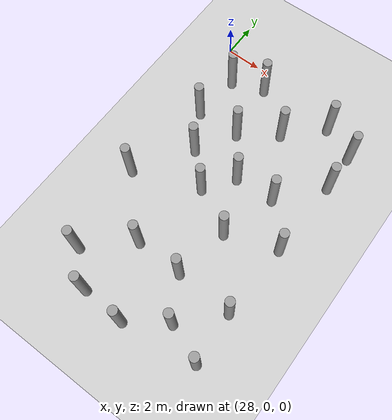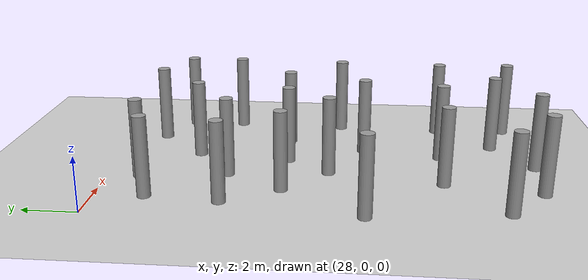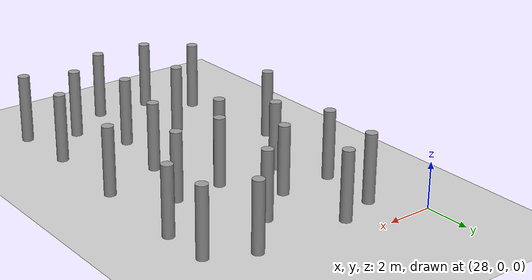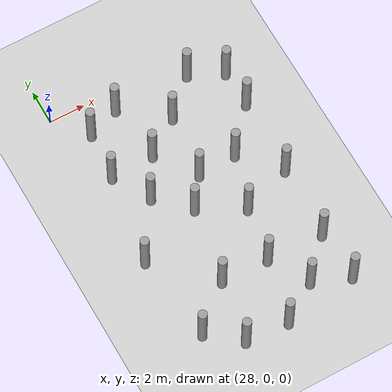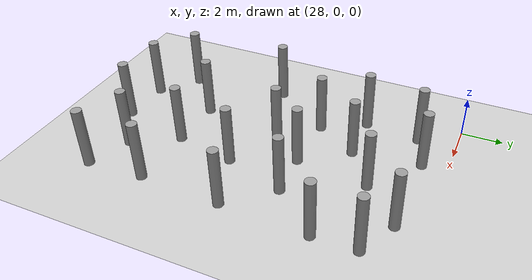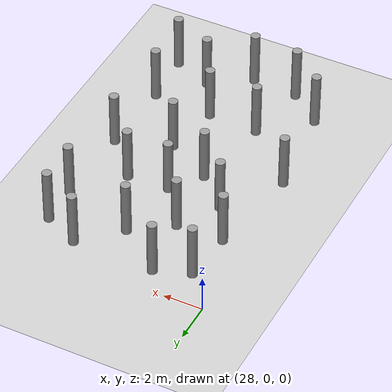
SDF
<sdf version="1.6">
 <world name="default">
  <model name="ground_plane">
   <static>1</static>
   <link name="link">
    <collision name="collision">
     <geometry><plane><normal>0 0 1</normal><size>100 100</size></plane></geometry>
     <surface><friction><ode><mu>100</mu><mu2>50</mu2></ode></friction></surface>
    </collision>
    <visual name="visual">
     <cast_shadows>0</cast_shadows>
     <geometry><plane><normal>0 0 1</normal><size>100 100</size></plane></geometry>
     <material>
      <script><uri>file://media/materials/scripts/gazebo.material</uri><name>Gazebo/Grey</name></script>
     </material>
    </visual>
   </link>
  </model>
  <model name="LjjForest_6">
   <link name="link_0_clone_1">
    <inertial>
     <mass>1</mass>
     <inertia><ixx>0.145833</ixx><ixy>0</ixy><ixz>0</ixz><iyy>0.145833</iyy><iyz>0</iyz><izz>0.125</izz></inertia>
    </inertial>
    <pose>-1.2394 -1.64814 0 0 -0 0</pose>
    <visual name="visual">
     <geometry><cylinder><radius>0.25</radius><length>3</length></cylinder></geometry>
     <material>
      <lighting>1</lighting>
      <script><uri>file://media/materials/scripts/gazebo.material</uri><name>Gazebo/Grey</name></script>
      <shader type="vertex"><normal_map>__default__</normal_map></shader>
      <ambient>0.3 0.3 0.3 1</ambient>
      <diffuse>0.7 0.7 0.7 1</diffuse>
      <specular>0.01 0.01 0.01 1</specular>
      <emissive>0 0 0 1</emissive>
     </material>
    </visual>
    <collision name="collision">
     <geometry><cylinder><radius>0.25</radius><length>3</length></cylinder></geometry>
     <surface>
      <friction>
       <ode><mu>1</mu><mu2>1</mu2><fdir1>0 0 0</fdir1><slip1>0</slip1><slip2>0</slip2></ode>
       <torsional>
        <coefficient>1</coefficient>
        <patch_radius>0</patch_radius>
        <surface_radius>0</surface_radius>
        <use_patch_radius>1</use_patch_radius>
        <ode><slip>0</slip></ode>
       </torsional>
      </friction>
      <bounce><restitution_coefficient>0</restitution_coefficient><threshold>1e+06</threshold></bounce>
      <contact>
       <collide_without_contact>0</collide_without_contact>
       <collide_without_contact_bitmask>1</collide_without_contact_bitmask>
       <collide_bitmask>1</collide_bitmask>
       <ode>
        <soft_cfm>0</soft_cfm>
        <soft_erp>0.2</soft_erp>
        <kp>1e+13</kp>
        <kd>1</kd>
        <max_vel>0.01</max_vel>
        <min_depth>0</min_depth>
       </ode>
       <bullet>
        <split_impulse>1</split_impulse>
        <split_impulse_penetration_threshold>-0.01</split_impulse_penetration_threshold>
        <soft_cfm>0</soft_cfm>
        <soft_erp>0.2</soft_erp>
        <kp>1e+13</kp>
        <kd>1</kd>
       </bullet>
      </contact>
     </surface>
    </collision>
   </link>
   <link name="link_0_clone_10">
    <inertial>
     <mass>1</mass>
     <inertia><ixx>0.145833</ixx><ixy>0</ixy><ixz>0</ixz><iyy>0.145833</iyy><iyz>0</iyz><izz>0.125</izz></inertia>
    </inertial>
    <pose>4.92442 -4.7051 0 0 -0 0</pose>
    <visual name="visual">
     <geometry><cylinder><radius>0.25</radius><length>3</length></cylinder></geometry>
     <material>
      <lighting>1</lighting>
      <script><uri>file://media/materials/scripts/gazebo.material</uri><name>Gazebo/Grey</name></script>
      <shader type="vertex"><normal_map>__default__</normal_map></shader>
      <ambient>0.3 0.3 0.3 1</ambient>
      <diffuse>0.7 0.7 0.7 1</diffuse>
      <specular>0.01 0.01 0.01 1</specular>
      <emissive>0 0 0 1</emissive>
     </material>
    </visual>
    <collision name="collision">
     <geometry><cylinder><radius>0.25</radius><length>3</length></cylinder></geometry>
     <surface>
      <friction>
       <ode><mu>1</mu><mu2>1</mu2><fdir1>0 0 0</fdir1><slip1>0</slip1><slip2>0</slip2></ode>
       <torsional>
        <coefficient>1</coefficient>
        <patch_radius>0</patch_radius>
        <surface_radius>0</surface_radius>
        <use_patch_radius>1</use_patch_radius>
        <ode><slip>0</slip></ode>
       </torsional>
      </friction>
      <bounce><restitution_coefficient>0</restitution_coefficient><threshold>1e+06</threshold></bounce>
      <contact>
       <collide_without_contact>0</collide_without_contact>
       <collide_without_contact_bitmask>1</collide_without_contact_bitmask>
       <collide_bitmask>1</collide_bitmask>
       <ode>
        <soft_cfm>0</soft_cfm>
        <soft_erp>0.2</soft_erp>
        <kp>1e+13</kp>
        <kd>1</kd>
        <max_vel>0.01</max_vel>
        <min_depth>0</min_depth>
       </ode>
       <bullet>
        <split_impulse>1</split_impulse>
        <split_impulse_penetration_threshold>-0.01</split_impulse_penetration_threshold>
        <soft_cfm>0</soft_cfm>
        <soft_erp>0.2</soft_erp>
        <kp>1e+13</kp>
        <kd>1</kd>
       </bullet>
      </contact>
     </surface>
    </collision>
   </link>
   <link name="link_0_clone_11">
    <inertial>
     <mass>1</mass>
     <inertia><ixx>0.145833</ixx><ixy>0</ixy><ixz>0</ixz><iyy>0.145833</iyy><iyz>0</iyz><izz>0.125</izz></inertia>
    </inertial>
    <pose>2.92414 -7.00263 0 0 -0 0</pose>
    <visual name="visual">
     <geometry><cylinder><radius>0.25</radius><length>3</length></cylinder></geometry>
     <material>
      <lighting>1</lighting>
      <script><uri>file://media/materials/scripts/gazebo.material</uri><name>Gazebo/Grey</name></script>
      <shader type="vertex"><normal_map>__default__</normal_map></shader>
      <ambient>0.3 0.3 0.3 1</ambient>
      <diffuse>0.7 0.7 0.7 1</diffuse>
      <specular>0.01 0.01 0.01 1</specular>
      <emissive>0 0 0 1</emissive>
     </material>
    </visual>
    <collision name="collision">
     <geometry><cylinder><radius>0.25</radius><length>3</length></cylinder></geometry>
     <surface>
      <friction>
       <ode><mu>1</mu><mu2>1</mu2><fdir1>0 0 0</fdir1><slip1>0</slip1><slip2>0</slip2></ode>
       <torsional>
        <coefficient>1</coefficient>
        <patch_radius>0</patch_radius>
        <surface_radius>0</surface_radius>
        <use_patch_radius>1</use_patch_radius>
        <ode><slip>0</slip></ode>
       </torsional>
      </friction>
      <bounce><restitution_coefficient>0</restitution_coefficient><threshold>1e+06</threshold></bounce>
      <contact>
       <collide_without_contact>0</collide_without_contact>
       <collide_without_contact_bitmask>1</collide_without_contact_bitmask>
       <collide_bitmask>1</collide_bitmask>
       <ode>
        <soft_cfm>0</soft_cfm>
        <soft_erp>0.2</soft_erp>
        <kp>1e+13</kp>
        <kd>1</kd>
        <max_vel>0.01</max_vel>
        <min_depth>0</min_depth>
       </ode>
       <bullet>
        <split_impulse>1</split_impulse>
        <split_impulse_penetration_threshold>-0.01</split_impulse_penetration_threshold>
        <soft_cfm>0</soft_cfm>
        <soft_erp>0.2</soft_erp>
        <kp>1e+13</kp>
        <kd>1</kd>
       </bullet>
      </contact>
     </surface>
    </collision>
   </link>
   <link name="link_0_clone_12">
    <inertial>
     <mass>1</mass>
     <inertia><ixx>0.145833</ixx><ixy>0</ixy><ixz>0</ixz><iyy>0.145833</iyy><iyz>0</iyz><izz>0.125</izz></inertia>
    </inertial>
    <pose>4.76112 -9.06376 0 0 -0 0</pose>
    <visual name="visual">
     <geometry><cylinder><radius>0.25</radius><length>3</length></cylinder></geometry>
     <material>
      <lighting>1</lighting>
      <script><uri>file://media/materials/scripts/gazebo.material</uri><name>Gazebo/Grey</name></script>
      <shader type="vertex"><normal_map>__default__</normal_map></shader>
      <ambient>0.3 0.3 0.3 1</ambient>
      <diffuse>0.7 0.7 0.7 1</diffuse>
      <specular>0.01 0.01 0.01 1</specular>
      <emissive>0 0 0 1</emissive>
     </material>
    </visual>
    <collision name="collision">
     <geometry><cylinder><radius>0.25</radius><length>3</length></cylinder></geometry>
     <surface>
      <friction>
       <ode><mu>1</mu><mu2>1</mu2><fdir1>0 0 0</fdir1><slip1>0</slip1><slip2>0</slip2></ode>
       <torsional>
        <coefficient>1</coefficient>
        <patch_radius>0</patch_radius>
        <surface_radius>0</surface_radius>
        <use_patch_radius>1</use_patch_radius>
        <ode><slip>0</slip></ode>
       </torsional>
      </friction>
      <bounce><restitution_coefficient>0</restitution_coefficient><threshold>1e+06</threshold></bounce>
      <contact>
       <collide_without_contact>0</collide_without_contact>
       <collide_without_contact_bitmask>1</collide_without_contact_bitmask>
       <collide_bitmask>1</collide_bitmask>
       <ode>
        <soft_cfm>0</soft_cfm>
        <soft_erp>0.2</soft_erp>
        <kp>1e+13</kp>
        <kd>1</kd>
        <max_vel>0.01</max_vel>
        <min_depth>0</min_depth>
       </ode>
       <bullet>
        <split_impulse>1</split_impulse>
        <split_impulse_penetration_threshold>-0.01</split_impulse_penetration_threshold>
        <soft_cfm>0</soft_cfm>
        <soft_erp>0.2</soft_erp>
        <kp>1e+13</kp>
        <kd>1</kd>
       </bullet>
      </contact>
     </surface>
    </collision>
   </link>
   <link name="link_0_clone_13">
    <inertial>
     <mass>1</mass>
     <inertia><ixx>0.145833</ixx><ixy>0</ixy><ixz>0</ixz><iyy>0.145833</iyy><iyz>0</iyz><izz>0.125</izz></inertia>
    </inertial>
    <pose>0.731055 -7.10049 0 0 -0 0</pose>
    <visual name="visual">
     <geometry><cylinder><radius>0.25</radius><length>3</length></cylinder></geometry>
     <material>
      <lighting>1</lighting>
      <script><uri>file://media/materials/scripts/gazebo.material</uri><name>Gazebo/Grey</name></script>
      <shader type="vertex"><normal_map>__default__</normal_map></shader>
      <ambient>0.3 0.3 0.3 1</ambient>
      <diffuse>0.7 0.7 0.7 1</diffuse>
      <specular>0.01 0.01 0.01 1</specular>
      <emissive>0 0 0 1</emissive>
     </material>
    </visual>
    <collision name="collision">
     <geometry><cylinder><radius>0.25</radius><length>3</length></cylinder></geometry>
     <surface>
      <friction>
       <ode><mu>1</mu><mu2>1</mu2><fdir1>0 0 0</fdir1><slip1>0</slip1><slip2>0</slip2></ode>
       <torsional>
        <coefficient>1</coefficient>
        <patch_radius>0</patch_radius>
        <surface_radius>0</surface_radius>
        <use_patch_radius>1</use_patch_radius>
        <ode><slip>0</slip></ode>
       </torsional>
      </friction>
      <bounce><restitution_coefficient>0</restitution_coefficient><threshold>1e+06</threshold></bounce>
      <contact>
       <collide_without_contact>0</collide_without_contact>
       <collide_without_contact_bitmask>1</collide_without_contact_bitmask>
       <collide_bitmask>1</collide_bitmask>
       <ode>
        <soft_cfm>0</soft_cfm>
        <soft_erp>0.2</soft_erp>
        <kp>1e+13</kp>
        <kd>1</kd>
        <max_vel>0.01</max_vel>
        <min_depth>0</min_depth>
       </ode>
       <bullet>
        <split_impulse>1</split_impulse>
        <split_impulse_penetration_threshold>-0.01</split_impulse_penetration_threshold>
        <soft_cfm>0</soft_cfm>
        <soft_erp>0.2</soft_erp>
        <kp>1e+13</kp>
        <kd>1</kd>
       </bullet>
      </contact>
     </surface>
    </collision>
   </link>
   <link name="link_0_clone_14">
    <inertial>
     <mass>1</mass>
     <inertia><ixx>0.145833</ixx><ixy>0</ixy><ixz>0</ixz><iyy>0.145833</iyy><iyz>0</iyz><izz>0.125</izz></inertia>
    </inertial>
    <pose>-0.840028 -4.93267 0 0 -0 0</pose>
    <visual name="visual">
     <geometry><cylinder><radius>0.25</radius><length>3</length></cylinder></geometry>
     <material>
      <lighting>1</lighting>
      <script><uri>file://media/materials/scripts/gazebo.material</uri><name>Gazebo/Grey</name></script>
      <shader type="vertex"><normal_map>__default__</normal_map></shader>
      <ambient>0.3 0.3 0.3 1</ambient>
      <diffuse>0.7 0.7 0.7 1</diffuse>
      <specular>0.01 0.01 0.01 1</specular>
      <emissive>0 0 0 1</emissive>
     </material>
    </visual>
    <collision name="collision">
     <geometry><cylinder><radius>0.25</radius><length>3</length></cylinder></geometry>
     <surface>
      <friction>
       <ode><mu>1</mu><mu2>1</mu2><fdir1>0 0 0</fdir1><slip1>0</slip1><slip2>0</slip2></ode>
       <torsional>
        <coefficient>1</coefficient>
        <patch_radius>0</patch_radius>
        <surface_radius>0</surface_radius>
        <use_patch_radius>1</use_patch_radius>
        <ode><slip>0</slip></ode>
       </torsional>
      </friction>
      <bounce><restitution_coefficient>0</restitution_coefficient><threshold>1e+06</threshold></bounce>
      <contact>
       <collide_without_contact>0</collide_without_contact>
       <collide_without_contact_bitmask>1</collide_without_contact_bitmask>
       <collide_bitmask>1</collide_bitmask>
       <ode>
        <soft_cfm>0</soft_cfm>
        <soft_erp>0.2</soft_erp>
        <kp>1e+13</kp>
        <kd>1</kd>
        <max_vel>0.01</max_vel>
        <min_depth>0</min_depth>
       </ode>
       <bullet>
        <split_impulse>1</split_impulse>
        <split_impulse_penetration_threshold>-0.01</split_impulse_penetration_threshold>
        <soft_cfm>0</soft_cfm>
        <soft_erp>0.2</soft_erp>
        <kp>1e+13</kp>
        <kd>1</kd>
       </bullet>
      </contact>
     </surface>
    </collision>
   </link>
   <link name="link_0_clone_15">
    <inertial>
     <mass>1</mass>
     <inertia><ixx>0.145833</ixx><ixy>0</ixy><ixz>0</ixz><iyy>0.145833</iyy><iyz>0</iyz><izz>0.125</izz></inertia>
    </inertial>
    <pose>-3.03254 -2.29236 0 0 -0 0</pose>
    <visual name="visual">
     <geometry><cylinder><radius>0.25</radius><length>3</length></cylinder></geometry>
     <material>
      <lighting>1</lighting>
      <script><uri>file://media/materials/scripts/gazebo.material</uri><name>Gazebo/Grey</name></script>
      <shader type="vertex"><normal_map>__default__</normal_map></shader>
      <ambient>0.3 0.3 0.3 1</ambient>
      <diffuse>0.7 0.7 0.7 1</diffuse>
      <specular>0.01 0.01 0.01 1</specular>
      <emissive>0 0 0 1</emissive>
     </material>
    </visual>
    <collision name="collision">
     <geometry><cylinder><radius>0.25</radius><length>3</length></cylinder></geometry>
     <surface>
      <friction>
       <ode><mu>1</mu><mu2>1</mu2><fdir1>0 0 0</fdir1><slip1>0</slip1><slip2>0</slip2></ode>
       <torsional>
        <coefficient>1</coefficient>
        <patch_radius>0</patch_radius>
        <surface_radius>0</surface_radius>
        <use_patch_radius>1</use_patch_radius>
        <ode><slip>0</slip></ode>
       </torsional>
      </friction>
      <bounce><restitution_coefficient>0</restitution_coefficient><threshold>1e+06</threshold></bounce>
      <contact>
       <collide_without_contact>0</collide_without_contact>
       <collide_without_contact_bitmask>1</collide_without_contact_bitmask>
       <collide_bitmask>1</collide_bitmask>
       <ode>
        <soft_cfm>0</soft_cfm>
        <soft_erp>0.2</soft_erp>
        <kp>1e+13</kp>
        <kd>1</kd>
        <max_vel>0.01</max_vel>
        <min_depth>0</min_depth>
       </ode>
       <bullet>
        <split_impulse>1</split_impulse>
        <split_impulse_penetration_threshold>-0.01</split_impulse_penetration_threshold>
        <soft_cfm>0</soft_cfm>
        <soft_erp>0.2</soft_erp>
        <kp>1e+13</kp>
        <kd>1</kd>
       </bullet>
      </contact>
     </surface>
    </collision>
   </link>
   <link name="link_0_clone_17">
    <inertial>
     <mass>1</mass>
     <inertia><ixx>0.145833</ixx><ixy>0</ixy><ixz>0</ixz><iyy>0.145833</iyy><iyz>0</iyz><izz>0.125</izz></inertia>
    </inertial>
    <pose>-3.28823 -4.99733 0 0 -0 0</pose>
    <visual name="visual">
     <geometry><cylinder><radius>0.25</radius><length>3</length></cylinder></geometry>
     <material>
      <lighting>1</lighting>
      <script><uri>file://media/materials/scripts/gazebo.material</uri><name>Gazebo/Grey</name></script>
      <shader type="vertex"><normal_map>__default__</normal_map></shader>
      <ambient>0.3 0.3 0.3 1</ambient>
      <diffuse>0.7 0.7 0.7 1</diffuse>
      <specular>0.01 0.01 0.01 1</specular>
      <emissive>0 0 0 1</emissive>
     </material>
    </visual>
    <collision name="collision">
     <geometry><cylinder><radius>0.25</radius><length>3</length></cylinder></geometry>
     <surface>
      <friction>
       <ode><mu>1</mu><mu2>1</mu2><fdir1>0 0 0</fdir1><slip1>0</slip1><slip2>0</slip2></ode>
       <torsional>
        <coefficient>1</coefficient>
        <patch_radius>0</patch_radius>
        <surface_radius>0</surface_radius>
        <use_patch_radius>1</use_patch_radius>
        <ode><slip>0</slip></ode>
       </torsional>
      </friction>
      <bounce><restitution_coefficient>0</restitution_coefficient><threshold>1e+06</threshold></bounce>
      <contact>
       <collide_without_contact>0</collide_without_contact>
       <collide_without_contact_bitmask>1</collide_without_contact_bitmask>
       <collide_bitmask>1</collide_bitmask>
       <ode>
        <soft_cfm>0</soft_cfm>
        <soft_erp>0.2</soft_erp>
        <kp>1e+13</kp>
        <kd>1</kd>
        <max_vel>0.01</max_vel>
        <min_depth>0</min_depth>
       </ode>
       <bullet>
        <split_impulse>1</split_impulse>
        <split_impulse_penetration_threshold>-0.01</split_impulse_penetration_threshold>
        <soft_cfm>0</soft_cfm>
        <soft_erp>0.2</soft_erp>
        <kp>1e+13</kp>
        <kd>1</kd>
       </bullet>
      </contact>
     </surface>
    </collision>
   </link>
   <link name="link_0_clone_18">
    <inertial>
     <mass>1</mass>
     <inertia><ixx>0.145833</ixx><ixy>0</ixy><ixz>0</ixz><iyy>0.145833</iyy><iyz>0</iyz><izz>0.125</izz></inertia>
    </inertial>
    <pose>-2.11118 -7.04502 0 0 -0 0</pose>
    <visual name="visual">
     <geometry><cylinder><radius>0.25</radius><length>3</length></cylinder></geometry>
     <material>
      <lighting>1</lighting>
      <script><uri>file://media/materials/scripts/gazebo.material</uri><name>Gazebo/Grey</name></script>
      <shader type="vertex"><normal_map>__default__</normal_map></shader>
      <ambient>0.3 0.3 0.3 1</ambient>
      <diffuse>0.7 0.7 0.7 1</diffuse>
      <specular>0.01 0.01 0.01 1</specular>
      <emissive>0 0 0 1</emissive>
     </material>
    </visual>
    <collision name="collision">
     <geometry><cylinder><radius>0.25</radius><length>3</length></cylinder></geometry>
     <surface>
      <friction>
       <ode><mu>1</mu><mu2>1</mu2><fdir1>0 0 0</fdir1><slip1>0</slip1><slip2>0</slip2></ode>
       <torsional>
        <coefficient>1</coefficient>
        <patch_radius>0</patch_radius>
        <surface_radius>0</surface_radius>
        <use_patch_radius>1</use_patch_radius>
        <ode><slip>0</slip></ode>
       </torsional>
      </friction>
      <bounce><restitution_coefficient>0</restitution_coefficient><threshold>1e+06</threshold></bounce>
      <contact>
       <collide_without_contact>0</collide_without_contact>
       <collide_without_contact_bitmask>1</collide_without_contact_bitmask>
       <collide_bitmask>1</collide_bitmask>
       <ode>
        <soft_cfm>0</soft_cfm>
        <soft_erp>0.2</soft_erp>
        <kp>1e+13</kp>
        <kd>1</kd>
        <max_vel>0.01</max_vel>
        <min_depth>0</min_depth>
       </ode>
       <bullet>
        <split_impulse>1</split_impulse>
        <split_impulse_penetration_threshold>-0.01</split_impulse_penetration_threshold>
        <soft_cfm>0</soft_cfm>
        <soft_erp>0.2</soft_erp>
        <kp>1e+13</kp>
        <kd>1</kd>
       </bullet>
      </contact>
     </surface>
    </collision>
   </link>
   <link name="link_0_clone_19">
    <inertial>
     <mass>1</mass>
     <inertia><ixx>0.145833</ixx><ixy>0</ixy><ixz>0</ixz><iyy>0.145833</iyy><iyz>0</iyz><izz>0.125</izz></inertia>
    </inertial>
    <pose>-0.4391 -8.69513 0 0 -0 0</pose>
    <visual name="visual">
     <geometry><cylinder><radius>0.25</radius><length>3</length></cylinder></geometry>
     <material>
      <lighting>1</lighting>
      <script><uri>file://media/materials/scripts/gazebo.material</uri><name>Gazebo/Grey</name></script>
      <shader type="vertex"><normal_map>__default__</normal_map></shader>
      <ambient>0.3 0.3 0.3 1</ambient>
      <diffuse>0.7 0.7 0.7 1</diffuse>
      <specular>0.01 0.01 0.01 1</specular>
      <emissive>0 0 0 1</emissive>
     </material>
    </visual>
    <collision name="collision">
     <geometry><cylinder><radius>0.25</radius><length>3</length></cylinder></geometry>
     <surface>
      <friction>
       <ode><mu>1</mu><mu2>1</mu2><fdir1>0 0 0</fdir1><slip1>0</slip1><slip2>0</slip2></ode>
       <torsional>
        <coefficient>1</coefficient>
        <patch_radius>0</patch_radius>
        <surface_radius>0</surface_radius>
        <use_patch_radius>1</use_patch_radius>
        <ode><slip>0</slip></ode>
       </torsional>
      </friction>
      <bounce><restitution_coefficient>0</restitution_coefficient><threshold>1e+06</threshold></bounce>
      <contact>
       <collide_without_contact>0</collide_without_contact>
       <collide_without_contact_bitmask>1</collide_without_contact_bitmask>
       <collide_bitmask>1</collide_bitmask>
       <ode>
        <soft_cfm>0</soft_cfm>
        <soft_erp>0.2</soft_erp>
        <kp>1e+13</kp>
        <kd>1</kd>
        <max_vel>0.01</max_vel>
        <min_depth>0</min_depth>
       </ode>
       <bullet>
        <split_impulse>1</split_impulse>
        <split_impulse_penetration_threshold>-0.01</split_impulse_penetration_threshold>
        <soft_cfm>0</soft_cfm>
        <soft_erp>0.2</soft_erp>
        <kp>1e+13</kp>
        <kd>1</kd>
       </bullet>
      </contact>
     </surface>
    </collision>
   </link>
   <link name="link_0_clone_20">
    <inertial>
     <mass>1</mass>
     <inertia><ixx>0.145833</ixx><ixy>0</ixy><ixz>0</ixz><iyy>0.145833</iyy><iyz>0</iyz><izz>0.125</izz></inertia>
    </inertial>
    <pose>1.97365 -10.0303 0 0 -0 0</pose>
    <visual name="visual">
     <geometry><cylinder><radius>0.25</radius><length>3</length></cylinder></geometry>
     <material>
      <lighting>1</lighting>
      <script><uri>file://media/materials/scripts/gazebo.material</uri><name>Gazebo/Grey</name></script>
      <shader type="vertex"><normal_map>__default__</normal_map></shader>
      <ambient>0.3 0.3 0.3 1</ambient>
      <diffuse>0.7 0.7 0.7 1</diffuse>
      <specular>0.01 0.01 0.01 1</specular>
      <emissive>0 0 0 1</emissive>
     </material>
    </visual>
    <collision name="collision">
     <geometry><cylinder><radius>0.25</radius><length>3</length></cylinder></geometry>
     <surface>
      <friction>
       <ode><mu>1</mu><mu2>1</mu2><fdir1>0 0 0</fdir1><slip1>0</slip1><slip2>0</slip2></ode>
       <torsional>
        <coefficient>1</coefficient>
        <patch_radius>0</patch_radius>
        <surface_radius>0</surface_radius>
        <use_patch_radius>1</use_patch_radius>
        <ode><slip>0</slip></ode>
       </torsional>
      </friction>
      <bounce><restitution_coefficient>0</restitution_coefficient><threshold>1e+06</threshold></bounce>
      <contact>
       <collide_without_contact>0</collide_without_contact>
       <collide_without_contact_bitmask>1</collide_without_contact_bitmask>
       <collide_bitmask>1</collide_bitmask>
       <ode>
        <soft_cfm>0</soft_cfm>
        <soft_erp>0.2</soft_erp>
        <kp>1e+13</kp>
        <kd>1</kd>
        <max_vel>0.01</max_vel>
        <min_depth>0</min_depth>
       </ode>
       <bullet>
        <split_impulse>1</split_impulse>
        <split_impulse_penetration_threshold>-0.01</split_impulse_penetration_threshold>
        <soft_cfm>0</soft_cfm>
        <soft_erp>0.2</soft_erp>
        <kp>1e+13</kp>
        <kd>1</kd>
       </bullet>
      </contact>
     </surface>
    </collision>
   </link>
   <link name="link_0_clone_21">
    <inertial>
     <mass>1</mass>
     <inertia><ixx>0.145833</ixx><ixy>0</ixy><ixz>0</ixz><iyy>0.145833</iyy><iyz>0</iyz><izz>0.125</izz></inertia>
    </inertial>
    <pose>-4.11405 -10.0375 0 0 -0 0</pose>
    <visual name="visual">
     <geometry><cylinder><radius>0.25</radius><length>3</length></cylinder></geometry>
     <material>
      <lighting>1</lighting>
      <script><uri>file://media/materials/scripts/gazebo.material</uri><name>Gazebo/Grey</name></script>
      <shader type="vertex"><normal_map>__default__</normal_map></shader>
      <ambient>0.3 0.3 0.3 1</ambient>
      <diffuse>0.7 0.7 0.7 1</diffuse>
      <specular>0.01 0.01 0.01 1</specular>
      <emissive>0 0 0 1</emissive>
     </material>
    </visual>
    <collision name="collision">
     <geometry><cylinder><radius>0.25</radius><length>3</length></cylinder></geometry>
     <surface>
      <friction>
       <ode><mu>1</mu><mu2>1</mu2><fdir1>0 0 0</fdir1><slip1>0</slip1><slip2>0</slip2></ode>
       <torsional>
        <coefficient>1</coefficient>
        <patch_radius>0</patch_radius>
        <surface_radius>0</surface_radius>
        <use_patch_radius>1</use_patch_radius>
        <ode><slip>0</slip></ode>
       </torsional>
      </friction>
      <bounce><restitution_coefficient>0</restitution_coefficient><threshold>1e+06</threshold></bounce>
      <contact>
       <collide_without_contact>0</collide_without_contact>
       <collide_without_contact_bitmask>1</collide_without_contact_bitmask>
       <collide_bitmask>1</collide_bitmask>
       <ode>
        <soft_cfm>0</soft_cfm>
        <soft_erp>0.2</soft_erp>
        <kp>1e+13</kp>
        <kd>1</kd>
        <max_vel>0.01</max_vel>
        <min_depth>0</min_depth>
       </ode>
       <bullet>
        <split_impulse>1</split_impulse>
        <split_impulse_penetration_threshold>-0.01</split_impulse_penetration_threshold>
        <soft_cfm>0</soft_cfm>
        <soft_erp>0.2</soft_erp>
        <kp>1e+13</kp>
        <kd>1</kd>
       </bullet>
      </contact>
     </surface>
    </collision>
   </link>
   <link name="link_0_clone_32">
    <inertial>
     <mass>1</mass>
     <inertia><ixx>0.145833</ixx><ixy>0</ixy><ixz>0</ixz><iyy>0.145833</iyy><iyz>0</iyz><izz>0.125</izz></inertia>
    </inertial>
    <pose>3.04344 -1.68403 0 0 -0 0</pose>
    <visual name="visual">
     <geometry><cylinder><radius>0.25</radius><length>3</length></cylinder></geometry>
     <material>
      <lighting>1</lighting>
      <script><uri>file://media/materials/scripts/gazebo.material</uri><name>Gazebo/Grey</name></script>
      <shader type="vertex"><normal_map>__default__</normal_map></shader>
      <ambient>0.3 0.3 0.3 1</ambient>
      <diffuse>0.7 0.7 0.7 1</diffuse>
      <specular>0.01 0.01 0.01 1</specular>
      <emissive>0 0 0 1</emissive>
     </material>
    </visual>
    <collision name="collision">
     <geometry><cylinder><radius>0.25</radius><length>3</length></cylinder></geometry>
     <surface>
      <friction>
       <ode><mu>1</mu><mu2>1</mu2><fdir1>0 0 0</fdir1><slip1>0</slip1><slip2>0</slip2></ode>
       <torsional>
        <coefficient>1</coefficient>
        <patch_radius>0</patch_radius>
        <surface_radius>0</surface_radius>
        <use_patch_radius>1</use_patch_radius>
        <ode><slip>0</slip></ode>
       </torsional>
      </friction>
      <bounce><restitution_coefficient>0</restitution_coefficient><threshold>1e+06</threshold></bounce>
      <contact>
       <collide_without_contact>0</collide_without_contact>
       <collide_without_contact_bitmask>1</collide_without_contact_bitmask>
       <collide_bitmask>1</collide_bitmask>
       <ode>
        <soft_cfm>0</soft_cfm>
        <soft_erp>0.2</soft_erp>
        <kp>1e+13</kp>
        <kd>1</kd>
        <max_vel>0.01</max_vel>
        <min_depth>0</min_depth>
       </ode>
       <bullet>
        <split_impulse>1</split_impulse>
        <split_impulse_penetration_threshold>-0.01</split_impulse_penetration_threshold>
        <soft_cfm>0</soft_cfm>
        <soft_erp>0.2</soft_erp>
        <kp>1e+13</kp>
        <kd>1</kd>
       </bullet>
      </contact>
     </surface>
    </collision>
   </link>
   <link name="link_0_clone_7">
    <inertial>
     <mass>1</mass>
     <inertia><ixx>0.145833</ixx><ixy>0</ixy><ixz>0</ixz><iyy>0.145833</iyy><iyz>0</iyz><izz>0.125</izz></inertia>
    </inertial>
    <pose>1.14853 -3.52752 0 0 -0 0</pose>
    <visual name="visual">
     <geometry><cylinder><radius>0.25</radius><length>3</length></cylinder></geometry>
     <material>
      <lighting>1</lighting>
      <script><uri>file://media/materials/scripts/gazebo.material</uri><name>Gazebo/Grey</name></script>
      <shader type="vertex"><normal_map>__default__</normal_map></shader>
      <ambient>0.3 0.3 0.3 1</ambient>
      <diffuse>0.7 0.7 0.7 1</diffuse>
      <specular>0.01 0.01 0.01 1</specular>
      <emissive>0 0 0 1</emissive>
     </material>
    </visual>
    <collision name="collision">
     <geometry><cylinder><radius>0.25</radius><length>3</length></cylinder></geometry>
     <surface>
      <friction>
       <ode><mu>1</mu><mu2>1</mu2><fdir1>0 0 0</fdir1><slip1>0</slip1><slip2>0</slip2></ode>
       <torsional>
        <coefficient>1</coefficient>
        <patch_radius>0</patch_radius>
        <surface_radius>0</surface_radius>
        <use_patch_radius>1</use_patch_radius>
        <ode><slip>0</slip></ode>
       </torsional>
      </friction>
      <bounce><restitution_coefficient>0</restitution_coefficient><threshold>1e+06</threshold></bounce>
      <contact>
       <collide_without_contact>0</collide_without_contact>
       <collide_without_contact_bitmask>1</collide_without_contact_bitmask>
       <collide_bitmask>1</collide_bitmask>
       <ode>
        <soft_cfm>0</soft_cfm>
        <soft_erp>0.2</soft_erp>
        <kp>1e+13</kp>
        <kd>1</kd>
        <max_vel>0.01</max_vel>
        <min_depth>0</min_depth>
       </ode>
       <bullet>
        <split_impulse>1</split_impulse>
        <split_impulse_penetration_threshold>-0.01</split_impulse_penetration_threshold>
        <soft_cfm>0</soft_cfm>
        <soft_erp>0.2</soft_erp>
        <kp>1e+13</kp>
        <kd>1</kd>
       </bullet>
      </contact>
     </surface>
    </collision>
   </link>
   <link name="link_0_clone_9">
    <inertial>
     <mass>1</mass>
     <inertia><ixx>0.145833</ixx><ixy>0</ixy><ixz>0</ixz><iyy>0.145833</iyy><iyz>0</iyz><izz>0.125</izz></inertia>
    </inertial>
    <pose>4.89769 -2.58143 0 0 -0 0</pose>
    <visual name="visual">
     <geometry><cylinder><radius>0.25</radius><length>3</length></cylinder></geometry>
     <material>
      <lighting>1</lighting>
      <script><uri>file://media/materials/scripts/gazebo.material</uri><name>Gazebo/Grey</name></script>
      <shader type="vertex"><normal_map>__default__</normal_map></shader>
      <ambient>0.3 0.3 0.3 1</ambient>
      <diffuse>0.7 0.7 0.7 1</diffuse>
      <specular>0.01 0.01 0.01 1</specular>
      <emissive>0 0 0 1</emissive>
     </material>
    </visual>
    <collision name="collision">
     <geometry><cylinder><radius>0.25</radius><length>3</length></cylinder></geometry>
     <surface>
      <friction>
       <ode><mu>1</mu><mu2>1</mu2><fdir1>0 0 0</fdir1><slip1>0</slip1><slip2>0</slip2></ode>
       <torsional>
        <coefficient>1</coefficient>
        <patch_radius>0</patch_radius>
        <surface_radius>0</surface_radius>
        <use_patch_radius>1</use_patch_radius>
        <ode><slip>0</slip></ode>
       </torsional>
      </friction>
      <bounce><restitution_coefficient>0</restitution_coefficient><threshold>1e+06</threshold></bounce>
      <contact>
       <collide_without_contact>0</collide_without_contact>
       <collide_without_contact_bitmask>1</collide_without_contact_bitmask>
       <collide_bitmask>1</collide_bitmask>
       <ode>
        <soft_cfm>0</soft_cfm>
        <soft_erp>0.2</soft_erp>
        <kp>1e+13</kp>
        <kd>1</kd>
        <max_vel>0.01</max_vel>
        <min_depth>0</min_depth>
       </ode>
       <bullet>
        <split_impulse>1</split_impulse>
        <split_impulse_penetration_threshold>-0.01</split_impulse_penetration_threshold>
        <soft_cfm>0</soft_cfm>
        <soft_erp>0.2</soft_erp>
        <kp>1e+13</kp>
        <kd>1</kd>
       </bullet>
      </contact>
     </surface>
    </collision>
   </link>
   <static>0</static>
   <pose>32.4934 0.445703 1.5 0 -0 0.002209</pose>
  </model>
  <model name="LjjForest_7">
   <link name="link_0_clone_24">
    <inertial>
     <mass>1</mass>
     <inertia><ixx>0.145833</ixx><ixy>0</ixy><ixz>0</ixz><iyy>0.145833</iyy><iyz>0</iyz><izz>0.125</izz></inertia>
    </inertial>
    <pose>2.92874 7.75131 0 0 -0 0</pose>
    <visual name="visual">
     <geometry><cylinder><radius>0.25</radius><length>3</length></cylinder></geometry>
     <material>
      <lighting>1</lighting>
      <script><uri>file://media/materials/scripts/gazebo.material</uri><name>Gazebo/Grey</name></script>
      <shader type="vertex"><normal_map>__default__</normal_map></shader>
      <ambient>0.3 0.3 0.3 1</ambient>
      <diffuse>0.7 0.7 0.7 1</diffuse>
      <specular>0.01 0.01 0.01 1</specular>
      <emissive>0 0 0 1</emissive>
     </material>
    </visual>
    <collision name="collision">
     <geometry><cylinder><radius>0.25</radius><length>3</length></cylinder></geometry>
     <surface>
      <friction>
       <ode><mu>1</mu><mu2>1</mu2><fdir1>0 0 0</fdir1><slip1>0</slip1><slip2>0</slip2></ode>
       <torsional>
        <coefficient>1</coefficient>
        <patch_radius>0</patch_radius>
        <surface_radius>0</surface_radius>
        <use_patch_radius>1</use_patch_radius>
        <ode><slip>0</slip></ode>
       </torsional>
      </friction>
      <bounce><restitution_coefficient>0</restitution_coefficient><threshold>1e+06</threshold></bounce>
      <contact>
       <collide_without_contact>0</collide_without_contact>
       <collide_without_contact_bitmask>1</collide_without_contact_bitmask>
       <collide_bitmask>1</collide_bitmask>
       <ode>
        <soft_cfm>0</soft_cfm>
        <soft_erp>0.2</soft_erp>
        <kp>1e+13</kp>
        <kd>1</kd>
        <max_vel>0.01</max_vel>
        <min_depth>0</min_depth>
       </ode>
       <bullet>
        <split_impulse>1</split_impulse>
        <split_impulse_penetration_threshold>-0.01</split_impulse_penetration_threshold>
        <soft_cfm>0</soft_cfm>
        <soft_erp>0.2</soft_erp>
        <kp>1e+13</kp>
        <kd>1</kd>
       </bullet>
      </contact>
     </surface>
    </collision>
   </link>
   <link name="link_0_clone_25">
    <inertial>
     <mass>1</mass>
     <inertia><ixx>0.145833</ixx><ixy>0</ixy><ixz>0</ixz><iyy>0.145833</iyy><iyz>0</iyz><izz>0.125</izz></inertia>
    </inertial>
    <pose>4.82479 9.76951 0 0 -0 0</pose>
    <visual name="visual">
     <geometry><cylinder><radius>0.25</radius><length>3</length></cylinder></geometry>
     <material>
      <lighting>1</lighting>
      <script><uri>file://media/materials/scripts/gazebo.material</uri><name>Gazebo/Grey</name></script>
      <shader type="vertex"><normal_map>__default__</normal_map></shader>
      <ambient>0.3 0.3 0.3 1</ambient>
      <diffuse>0.7 0.7 0.7 1</diffuse>
      <specular>0.01 0.01 0.01 1</specular>
      <emissive>0 0 0 1</emissive>
     </material>
    </visual>
    <collision name="collision">
     <geometry><cylinder><radius>0.25</radius><length>3</length></cylinder></geometry>
     <surface>
      <friction>
       <ode><mu>1</mu><mu2>1</mu2><fdir1>0 0 0</fdir1><slip1>0</slip1><slip2>0</slip2></ode>
       <torsional>
        <coefficient>1</coefficient>
        <patch_radius>0</patch_radius>
        <surface_radius>0</surface_radius>
        <use_patch_radius>1</use_patch_radius>
        <ode><slip>0</slip></ode>
       </torsional>
      </friction>
      <bounce><restitution_coefficient>0</restitution_coefficient><threshold>1e+06</threshold></bounce>
      <contact>
       <collide_without_contact>0</collide_without_contact>
       <collide_without_contact_bitmask>1</collide_without_contact_bitmask>
       <collide_bitmask>1</collide_bitmask>
       <ode>
        <soft_cfm>0</soft_cfm>
        <soft_erp>0.2</soft_erp>
        <kp>1e+13</kp>
        <kd>1</kd>
        <max_vel>0.01</max_vel>
        <min_depth>0</min_depth>
       </ode>
       <bullet>
        <split_impulse>1</split_impulse>
        <split_impulse_penetration_threshold>-0.01</split_impulse_penetration_threshold>
        <soft_cfm>0</soft_cfm>
        <soft_erp>0.2</soft_erp>
        <kp>1e+13</kp>
        <kd>1</kd>
       </bullet>
      </contact>
     </surface>
    </collision>
   </link>
   <link name="link_0_clone_26">
    <inertial>
     <mass>1</mass>
     <inertia><ixx>0.145833</ixx><ixy>0</ixy><ixz>0</ixz><iyy>0.145833</iyy><iyz>0</iyz><izz>0.125</izz></inertia>
    </inertial>
    <pose>1.66794 9.91533 0 0 -0 0</pose>
    <visual name="visual">
     <geometry><cylinder><radius>0.25</radius><length>3</length></cylinder></geometry>
     <material>
      <lighting>1</lighting>
      <script><uri>file://media/materials/scripts/gazebo.material</uri><name>Gazebo/Grey</name></script>
      <shader type="vertex"><normal_map>__default__</normal_map></shader>
      <ambient>0.3 0.3 0.3 1</ambient>
      <diffuse>0.7 0.7 0.7 1</diffuse>
      <specular>0.01 0.01 0.01 1</specular>
      <emissive>0 0 0 1</emissive>
     </material>
    </visual>
    <collision name="collision">
     <geometry><cylinder><radius>0.25</radius><length>3</length></cylinder></geometry>
     <surface>
      <friction>
       <ode><mu>1</mu><mu2>1</mu2><fdir1>0 0 0</fdir1><slip1>0</slip1><slip2>0</slip2></ode>
       <torsional>
        <coefficient>1</coefficient>
        <patch_radius>0</patch_radius>
        <surface_radius>0</surface_radius>
        <use_patch_radius>1</use_patch_radius>
        <ode><slip>0</slip></ode>
       </torsional>
      </friction>
      <bounce><restitution_coefficient>0</restitution_coefficient><threshold>1e+06</threshold></bounce>
      <contact>
       <collide_without_contact>0</collide_without_contact>
       <collide_without_contact_bitmask>1</collide_without_contact_bitmask>
       <collide_bitmask>1</collide_bitmask>
       <ode>
        <soft_cfm>0</soft_cfm>
        <soft_erp>0.2</soft_erp>
        <kp>1e+13</kp>
        <kd>1</kd>
        <max_vel>0.01</max_vel>
        <min_depth>0</min_depth>
       </ode>
       <bullet>
        <split_impulse>1</split_impulse>
        <split_impulse_penetration_threshold>-0.01</split_impulse_penetration_threshold>
        <soft_cfm>0</soft_cfm>
        <soft_erp>0.2</soft_erp>
        <kp>1e+13</kp>
        <kd>1</kd>
       </bullet>
      </contact>
     </surface>
    </collision>
   </link>
   <link name="link_0_clone_27">
    <inertial>
     <mass>1</mass>
     <inertia><ixx>0.145833</ixx><ixy>0</ixy><ixz>0</ixz><iyy>0.145833</iyy><iyz>0</iyz><izz>0.125</izz></inertia>
    </inertial>
    <pose>-0.975859 10.0087 0 0 -0 0</pose>
    <visual name="visual">
     <geometry><cylinder><radius>0.25</radius><length>3</length></cylinder></geometry>
     <material>
      <lighting>1</lighting>
      <script><uri>file://media/materials/scripts/gazebo.material</uri><name>Gazebo/Grey</name></script>
      <shader type="vertex"><normal_map>__default__</normal_map></shader>
      <ambient>0.3 0.3 0.3 1</ambient>
      <diffuse>0.7 0.7 0.7 1</diffuse>
      <specular>0.01 0.01 0.01 1</specular>
      <emissive>0 0 0 1</emissive>
     </material>
    </visual>
    <collision name="collision">
     <geometry><cylinder><radius>0.25</radius><length>3</length></cylinder></geometry>
     <surface>
      <friction>
       <ode><mu>1</mu><mu2>1</mu2><fdir1>0 0 0</fdir1><slip1>0</slip1><slip2>0</slip2></ode>
       <torsional>
        <coefficient>1</coefficient>
        <patch_radius>0</patch_radius>
        <surface_radius>0</surface_radius>
        <use_patch_radius>1</use_patch_radius>
        <ode><slip>0</slip></ode>
       </torsional>
      </friction>
      <bounce><restitution_coefficient>0</restitution_coefficient><threshold>1e+06</threshold></bounce>
      <contact>
       <collide_without_contact>0</collide_without_contact>
       <collide_without_contact_bitmask>1</collide_without_contact_bitmask>
       <collide_bitmask>1</collide_bitmask>
       <ode>
        <soft_cfm>0</soft_cfm>
        <soft_erp>0.2</soft_erp>
        <kp>1e+13</kp>
        <kd>1</kd>
        <max_vel>0.01</max_vel>
        <min_depth>0</min_depth>
       </ode>
       <bullet>
        <split_impulse>1</split_impulse>
        <split_impulse_penetration_threshold>-0.01</split_impulse_penetration_threshold>
        <soft_cfm>0</soft_cfm>
        <soft_erp>0.2</soft_erp>
        <kp>1e+13</kp>
        <kd>1</kd>
       </bullet>
      </contact>
     </surface>
    </collision>
   </link>
   <link name="link_0_clone_28">
    <inertial>
     <mass>1</mass>
     <inertia><ixx>0.145833</ixx><ixy>0</ixy><ixz>0</ixz><iyy>0.145833</iyy><iyz>0</iyz><izz>0.125</izz></inertia>
    </inertial>
    <pose>-3.28832 7.97521 0 0 -0 0</pose>
    <visual name="visual">
     <geometry><cylinder><radius>0.25</radius><length>3</length></cylinder></geometry>
     <material>
      <lighting>1</lighting>
      <script><uri>file://media/materials/scripts/gazebo.material</uri><name>Gazebo/Grey</name></script>
      <shader type="vertex"><normal_map>__default__</normal_map></shader>
      <ambient>0.3 0.3 0.3 1</ambient>
      <diffuse>0.7 0.7 0.7 1</diffuse>
      <specular>0.01 0.01 0.01 1</specular>
      <emissive>0 0 0 1</emissive>
     </material>
    </visual>
    <collision name="collision">
     <geometry><cylinder><radius>0.25</radius><length>3</length></cylinder></geometry>
     <surface>
      <friction>
       <ode><mu>1</mu><mu2>1</mu2><fdir1>0 0 0</fdir1><slip1>0</slip1><slip2>0</slip2></ode>
       <torsional>
        <coefficient>1</coefficient>
        <patch_radius>0</patch_radius>
        <surface_radius>0</surface_radius>
        <use_patch_radius>1</use_patch_radius>
        <ode><slip>0</slip></ode>
       </torsional>
      </friction>
      <bounce><restitution_coefficient>0</restitution_coefficient><threshold>1e+06</threshold></bounce>
      <contact>
       <collide_without_contact>0</collide_without_contact>
       <collide_without_contact_bitmask>1</collide_without_contact_bitmask>
       <collide_bitmask>1</collide_bitmask>
       <ode>
        <soft_cfm>0</soft_cfm>
        <soft_erp>0.2</soft_erp>
        <kp>1e+13</kp>
        <kd>1</kd>
        <max_vel>0.01</max_vel>
        <min_depth>0</min_depth>
       </ode>
       <bullet>
        <split_impulse>1</split_impulse>
        <split_impulse_penetration_threshold>-0.01</split_impulse_penetration_threshold>
        <soft_cfm>0</soft_cfm>
        <soft_erp>0.2</soft_erp>
        <kp>1e+13</kp>
        <kd>1</kd>
       </bullet>
      </contact>
     </surface>
    </collision>
   </link>
   <link name="link_0_clone_30">
    <inertial>
     <mass>1</mass>
     <inertia><ixx>0.145833</ixx><ixy>0</ixy><ixz>0</ixz><iyy>0.145833</iyy><iyz>0</iyz><izz>0.125</izz></inertia>
    </inertial>
    <pose>4.96935 6.93626 0 0 -0 0</pose>
    <visual name="visual">
     <geometry><cylinder><radius>0.25</radius><length>3</length></cylinder></geometry>
     <material>
      <lighting>1</lighting>
      <script><uri>file://media/materials/scripts/gazebo.material</uri><name>Gazebo/Grey</name></script>
      <shader type="vertex"><normal_map>__default__</normal_map></shader>
      <ambient>0.3 0.3 0.3 1</ambient>
      <diffuse>0.7 0.7 0.7 1</diffuse>
      <specular>0.01 0.01 0.01 1</specular>
      <emissive>0 0 0 1</emissive>
     </material>
    </visual>
    <collision name="collision">
     <geometry><cylinder><radius>0.25</radius><length>3</length></cylinder></geometry>
     <surface>
      <friction>
       <ode><mu>1</mu><mu2>1</mu2><fdir1>0 0 0</fdir1><slip1>0</slip1><slip2>0</slip2></ode>
       <torsional>
        <coefficient>1</coefficient>
        <patch_radius>0</patch_radius>
        <surface_radius>0</surface_radius>
        <use_patch_radius>1</use_patch_radius>
        <ode><slip>0</slip></ode>
       </torsional>
      </friction>
      <bounce><restitution_coefficient>0</restitution_coefficient><threshold>1e+06</threshold></bounce>
      <contact>
       <collide_without_contact>0</collide_without_contact>
       <collide_without_contact_bitmask>1</collide_without_contact_bitmask>
       <collide_bitmask>1</collide_bitmask>
       <ode>
        <soft_cfm>0</soft_cfm>
        <soft_erp>0.2</soft_erp>
        <kp>1e+13</kp>
        <kd>1</kd>
        <max_vel>0.01</max_vel>
        <min_depth>0</min_depth>
       </ode>
       <bullet>
        <split_impulse>1</split_impulse>
        <split_impulse_penetration_threshold>-0.01</split_impulse_penetration_threshold>
        <soft_cfm>0</soft_cfm>
        <soft_erp>0.2</soft_erp>
        <kp>1e+13</kp>
        <kd>1</kd>
       </bullet>
      </contact>
     </surface>
    </collision>
   </link>
   <link name="link_0_clone_4">
    <inertial>
     <mass>1</mass>
     <inertia><ixx>0.145833</ixx><ixy>0</ixy><ixz>0</ixz><iyy>0.145833</iyy><iyz>0</iyz><izz>0.125</izz></inertia>
    </inertial>
    <pose>0.858928 6.3824 0 0 -0 0</pose>
    <visual name="visual">
     <geometry><cylinder><radius>0.25</radius><length>3</length></cylinder></geometry>
     <material>
      <lighting>1</lighting>
      <script><uri>file://media/materials/scripts/gazebo.material</uri><name>Gazebo/Grey</name></script>
      <shader type="vertex"><normal_map>__default__</normal_map></shader>
      <ambient>0.3 0.3 0.3 1</ambient>
      <diffuse>0.7 0.7 0.7 1</diffuse>
      <specular>0.01 0.01 0.01 1</specular>
      <emissive>0 0 0 1</emissive>
     </material>
    </visual>
    <collision name="collision">
     <geometry><cylinder><radius>0.25</radius><length>3</length></cylinder></geometry>
     <surface>
      <friction>
       <ode><mu>1</mu><mu2>1</mu2><fdir1>0 0 0</fdir1><slip1>0</slip1><slip2>0</slip2></ode>
       <torsional>
        <coefficient>1</coefficient>
        <patch_radius>0</patch_radius>
        <surface_radius>0</surface_radius>
        <use_patch_radius>1</use_patch_radius>
        <ode><slip>0</slip></ode>
       </torsional>
      </friction>
      <bounce><restitution_coefficient>0</restitution_coefficient><threshold>1e+06</threshold></bounce>
      <contact>
       <collide_without_contact>0</collide_without_contact>
       <collide_without_contact_bitmask>1</collide_without_contact_bitmask>
       <collide_bitmask>1</collide_bitmask>
       <ode>
        <soft_cfm>0</soft_cfm>
        <soft_erp>0.2</soft_erp>
        <kp>1e+13</kp>
        <kd>1</kd>
        <max_vel>0.01</max_vel>
        <min_depth>0</min_depth>
       </ode>
       <bullet>
        <split_impulse>1</split_impulse>
        <split_impulse_penetration_threshold>-0.01</split_impulse_penetration_threshold>
        <soft_cfm>0</soft_cfm>
        <soft_erp>0.2</soft_erp>
        <kp>1e+13</kp>
        <kd>1</kd>
       </bullet>
      </contact>
     </surface>
    </collision>
   </link>
   <link name="link_0_clone_5">
    <inertial>
     <mass>1</mass>
     <inertia><ixx>0.145833</ixx><ixy>0</ixy><ixz>0</ixz><iyy>0.145833</iyy><iyz>0</iyz><izz>0.125</izz></inertia>
    </inertial>
    <pose>-1.56065 6.53618 0 0 -0 0</pose>
    <visual name="visual">
     <geometry><cylinder><radius>0.25</radius><length>3</length></cylinder></geometry>
     <material>
      <lighting>1</lighting>
      <script><uri>file://media/materials/scripts/gazebo.material</uri><name>Gazebo/Grey</name></script>
      <shader type="vertex"><normal_map>__default__</normal_map></shader>
      <ambient>0.3 0.3 0.3 1</ambient>
      <diffuse>0.7 0.7 0.7 1</diffuse>
      <specular>0.01 0.01 0.01 1</specular>
      <emissive>0 0 0 1</emissive>
     </material>
    </visual>
    <collision name="collision">
     <geometry><cylinder><radius>0.25</radius><length>3</length></cylinder></geometry>
     <surface>
      <friction>
       <ode><mu>1</mu><mu2>1</mu2><fdir1>0 0 0</fdir1><slip1>0</slip1><slip2>0</slip2></ode>
       <torsional>
        <coefficient>1</coefficient>
        <patch_radius>0</patch_radius>
        <surface_radius>0</surface_radius>
        <use_patch_radius>1</use_patch_radius>
        <ode><slip>0</slip></ode>
       </torsional>
      </friction>
      <bounce><restitution_coefficient>0</restitution_coefficient><threshold>1e+06</threshold></bounce>
      <contact>
       <collide_without_contact>0</collide_without_contact>
       <collide_without_contact_bitmask>1</collide_without_contact_bitmask>
       <collide_bitmask>1</collide_bitmask>
       <ode>
        <soft_cfm>0</soft_cfm>
        <soft_erp>0.2</soft_erp>
        <kp>1e+13</kp>
        <kd>1</kd>
        <max_vel>0.01</max_vel>
        <min_depth>0</min_depth>
       </ode>
       <bullet>
        <split_impulse>1</split_impulse>
        <split_impulse_penetration_threshold>-0.01</split_impulse_penetration_threshold>
        <soft_cfm>0</soft_cfm>
        <soft_erp>0.2</soft_erp>
        <kp>1e+13</kp>
        <kd>1</kd>
       </bullet>
      </contact>
     </surface>
    </collision>
   </link>
   <static>0</static>
   <pose>32.2941 -22.489 1.5 0 -0 0.002156</pose>
  </model>
 </world>
</sdf>
